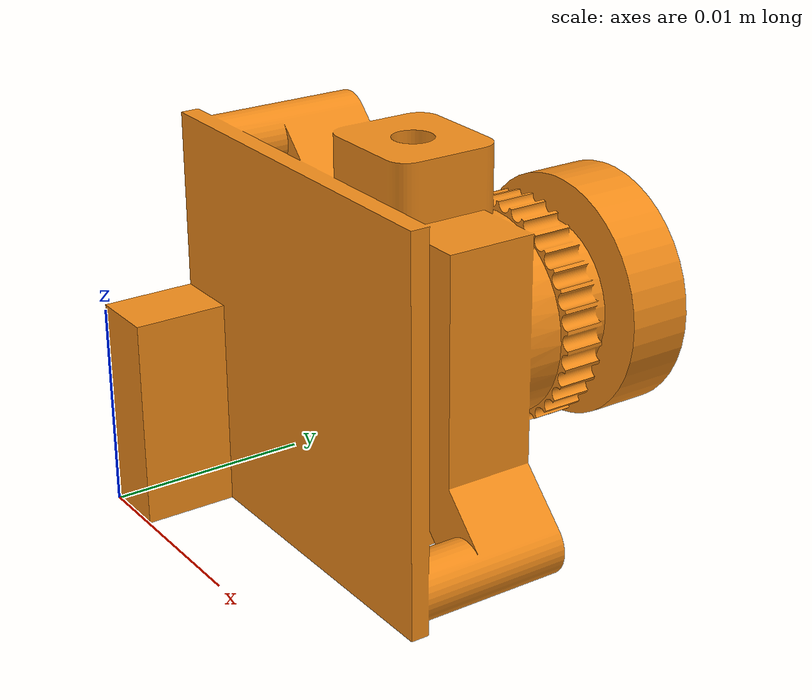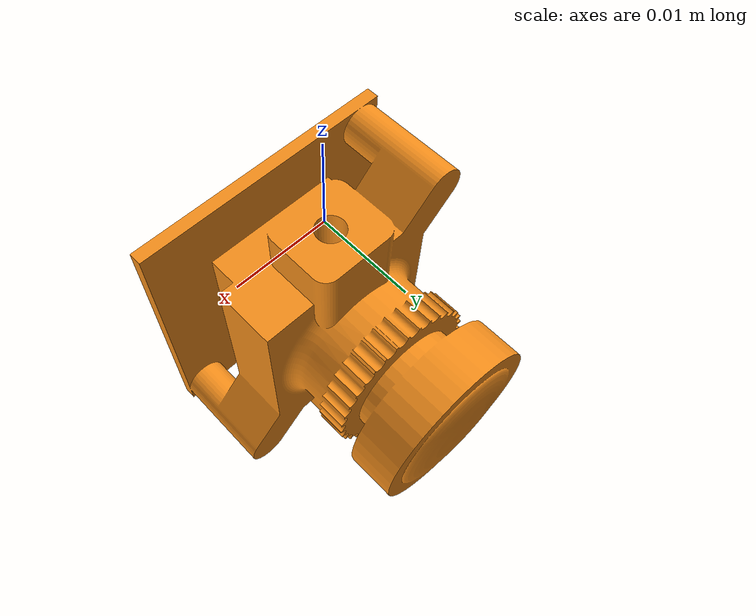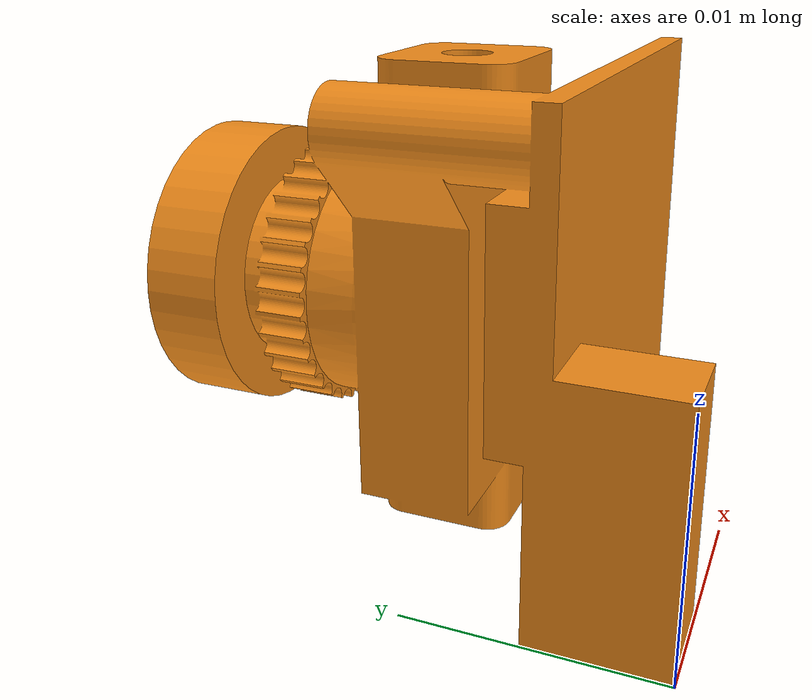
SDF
<?xml version='1.0'?>
<sdf version='1.6'>
  <model name='runcam_micro_swift'>
    <link name='base_link'>
       <inertial>

        <mass>5.6</mass><!-- https://shop.runcam.com/runcam-micro-swift/ -->
		<inertia> <!-- From Meshlab -->
          <ixx>0</ixx>
          <ixy>0</ixy>
          <ixz>0</ixz>
          <iyy>0</iyy>
          <iyz>0</iyz>
          <izz>0</izz>
        </inertia>
      </inertial>

      <visual name='base_main_viz'>
        <geometry>
         <mesh>
           <uri>model://runcam_micro_swift/meshes/runcam_micro_swift.dae</uri>
         </mesh>
        </geometry>
        <material>
          <script>
            <uri>file://media/materials/scripts/gazebo.material</uri>
            <name>Gazebo/Orange</name>
          </script>
        </material>
      </visual>

      <collision name='base_col'>
		  <pose>0.0094 0.0115 0.0095 0 0 0</pose> <!-- Half of bounding box -->
		<geometry>
          <box>
			  <size>0.018800 0.023000 0.019000</size><!-- Output from meshlab -->
		  </box>
        </geometry>
      </collision>

	</link>
</model>
</sdf>
